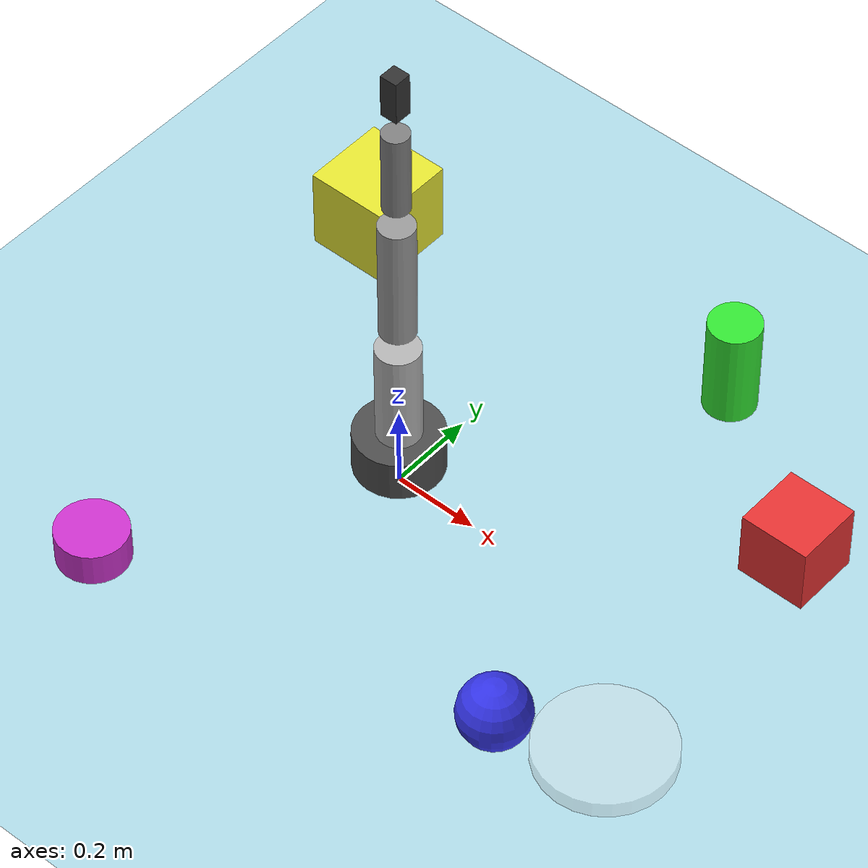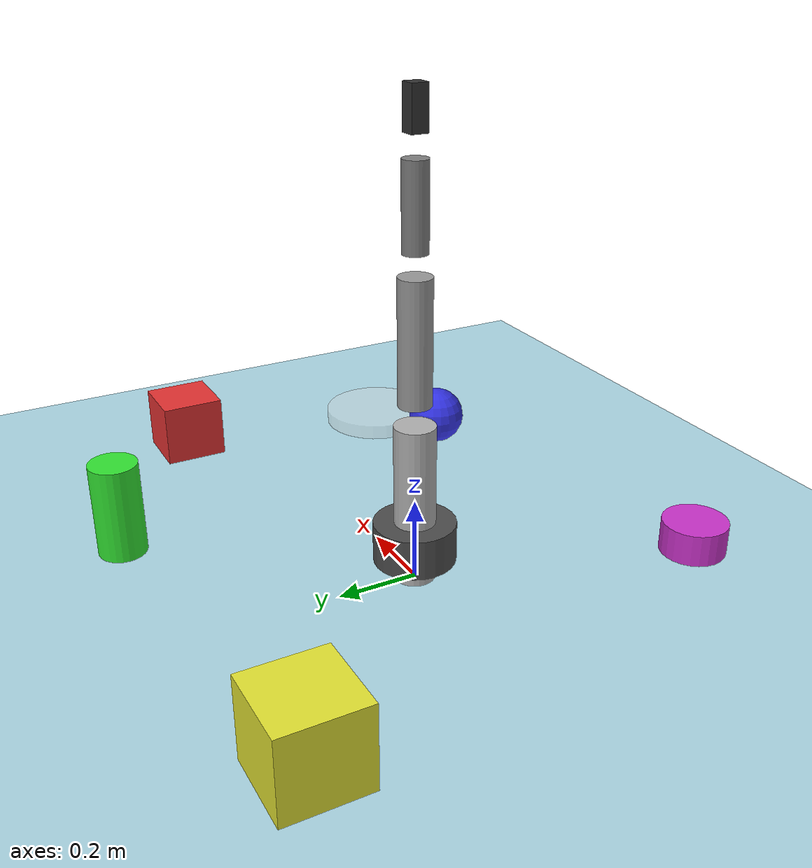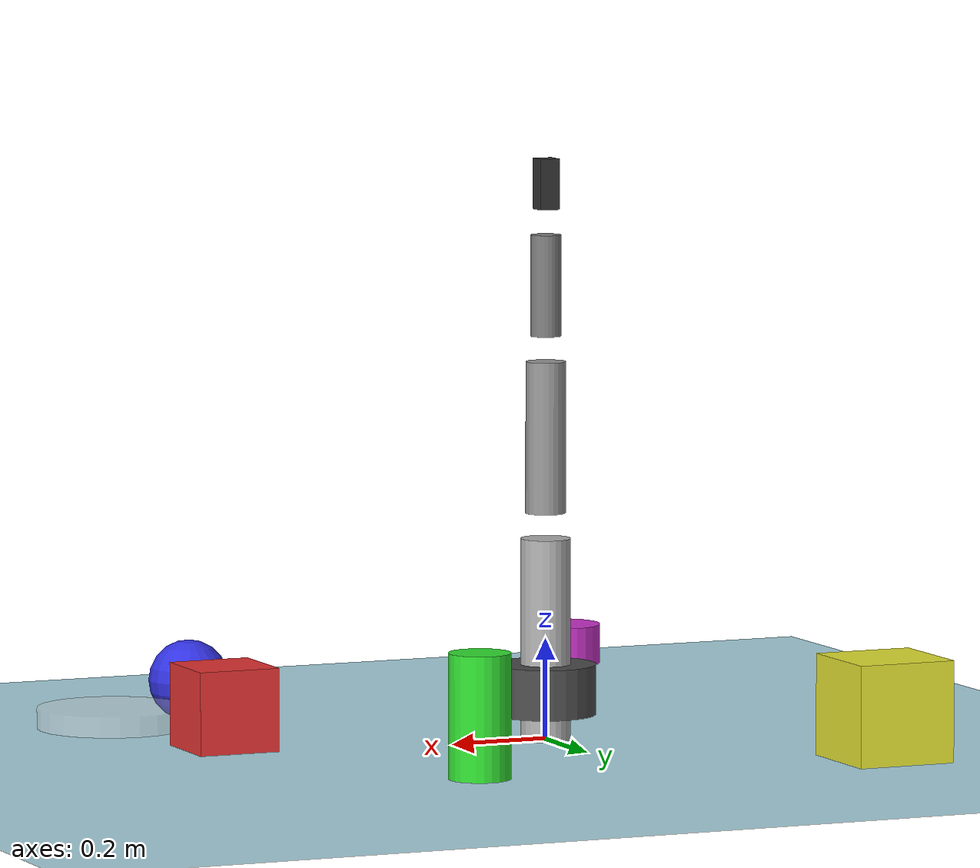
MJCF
<mujoco>
	<worldbody>
		<!-- Lighting -->
		<light diffuse=".8 .8 .8" pos="0 0 3" dir="0 0 -1"/>
		<light diffuse=".3 .3 .3" pos="2 0 2" dir="-1 0 -1"/>
		<light diffuse=".4 .4 .4" pos="-2 0 2" dir="1 0 -1"/>

		<!-- Ground plane -->
		<geom type="plane" size="3 3 0.1" rgba="0.68 0.85 0.90 1"/>

		<!-- Robotic Arm -->
		<body name="base" pos="0 0 0.1">
			<joint type="free"/>
			<geom type="cylinder" size="0.1 0.05" rgba="0.3 0.3 0.3 1"/>

			<!-- First arm segment -->
			<body name="arm1" pos="0 0 0.1">
				<joint name="joint1" type="hinge" axis="0 0 1" pos="0 0 0" range="-180 180"/>
				<geom type="cylinder" size="0.05 0.2" rgba="0.7 0.7 0.7 1"/>

				<!-- Second arm segment -->
				<body name="arm2" pos="0 0 0.4">
					<joint name="joint2" type="hinge" axis="0 0 1" pos="0 0 0" range="-180 180"/>
					<geom type="cylinder" size="0.04 0.15" rgba="0.6 0.6 0.6 1"/>

					<!-- Third arm segment -->
					<body name="arm3" pos="0 0 0.3">
						<joint name="joint3" type="hinge" axis="0 0 1" pos="0 0 0" range="-180 180"/>
						<geom type="cylinder" size="0.03 0.1" rgba="0.5 0.5 0.5 1"/>

						<!-- End effector -->
						<body name="gripper" pos="0 0 0.2">
							<joint name="joint4" type="hinge" axis="0 0 1" pos="0 0 0" range="-90 90"/>
							<geom type="box" size="0.02 0.02 0.05" rgba="0.2 0.2 0.2 1"/>
						</body>
					</body>
				</body>
			</body>
		</body>

		<!-- Objects to interact with -->
		<!-- Red cube -->
		<body name="red_cube" pos="0.8 0.3 0.15">
			<joint type="free"/>
			<geom type="box" size="0.08 0.08 0.08" rgba="0.9 0.2 0.2 1"/>
		</body>

		<!-- Blue sphere -->
		<body name="blue_sphere" pos="0.6 -0.4 0.1">
			<joint type="free"/>
			<geom type="sphere" size="0.08" rgba="0.2 0.2 0.9 1"/>
		</body>

		<!-- Green cylinder -->
		<body name="green_cylinder" pos="0.4 0.6 0.15">
			<joint type="free"/>
			<geom type="cylinder" size="0.06 0.12" rgba="0.2 0.9 0.2 1"/>
		</body>

		<!-- Yellow pyramid -->
		<body name="yellow_pyramid" pos="-0.5 0.5 0.1">
			<joint type="free"/>
			<geom type="box" size="0.1 0.1 0.1" rgba="0.9 0.9 0.2 1"/>
		</body>

		<!-- Purple torus -->
		<body name="purple_torus" pos="-0.3 -0.6 0.1">
			<joint type="free"/>
			<geom type="cylinder" size="0.08 0.04" rgba="0.8 0.2 0.8 1"/>
		</body>

		<!-- Target zone -->
		<body name="target_zone" pos="0.8 -0.3 0.05">
			<joint type="free"/>
			<geom type="cylinder" size="0.15 0.02" rgba="0.9 0.9 0.9 0.3"/>
		</body>

		<!-- Cameras -->
		<!-- Main camera - positioned to see the arm and objects -->
		<camera name="robot_camera" pos="1.5 0 1.2" euler="0 -30 0"/>

		<!-- Side camera for different perspective -->
		<camera name="side_camera" pos="0 1.5 1.0" euler="0 -30 90"/>

		<!-- Top-down camera -->
		<camera name="scene_camera" pos="0 0 2.5" euler="0 0 0"/>

		<!-- Close-up camera -->
		<camera name="close_camera" pos="0.8 0 0.8" euler="0 -45 0"/>
	</worldbody>

	<!-- Actuators for the arm -->
	<actuator>
		<position name="actuator1" joint="joint1" kp="100"/>
		<position name="actuator2" joint="joint2" kp="100"/>
		<position name="actuator3" joint="joint3" kp="100"/>
		<position name="actuator4" joint="joint4" kp="100"/>
	</actuator>

	<!-- Contact pairs for object interactions -->
	<contact>
		<exclude body1="base" body2="arm1"/>
		<exclude body1="arm1" body2="arm2"/>
		<exclude body1="arm2" body2="arm3"/>
		<exclude body1="arm3" body2="gripper"/>
	</contact>
</mujoco>
